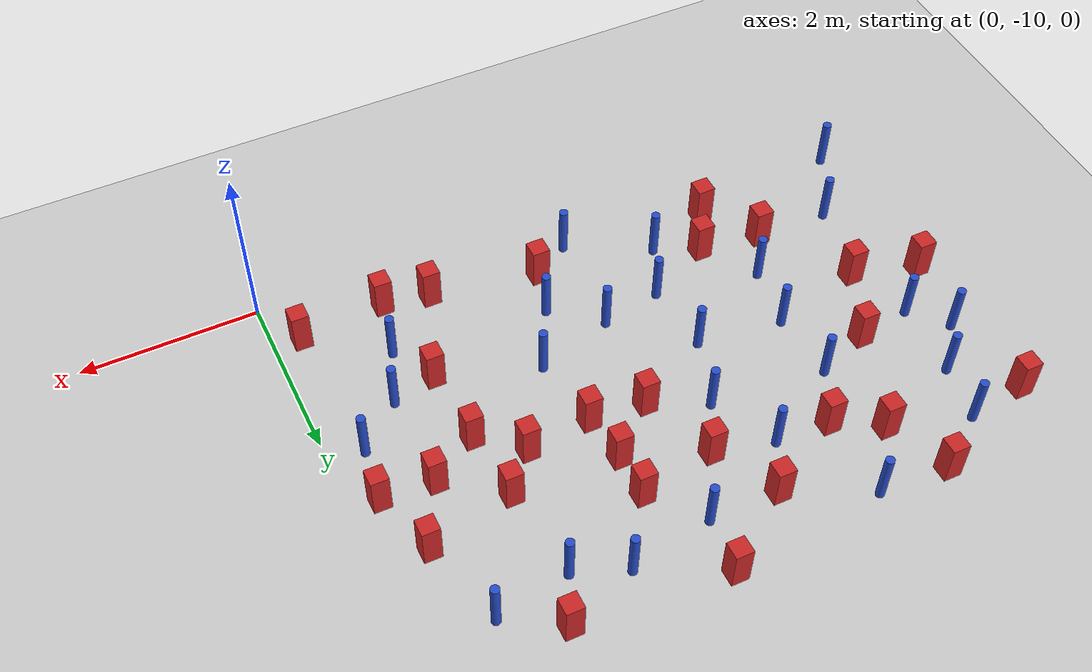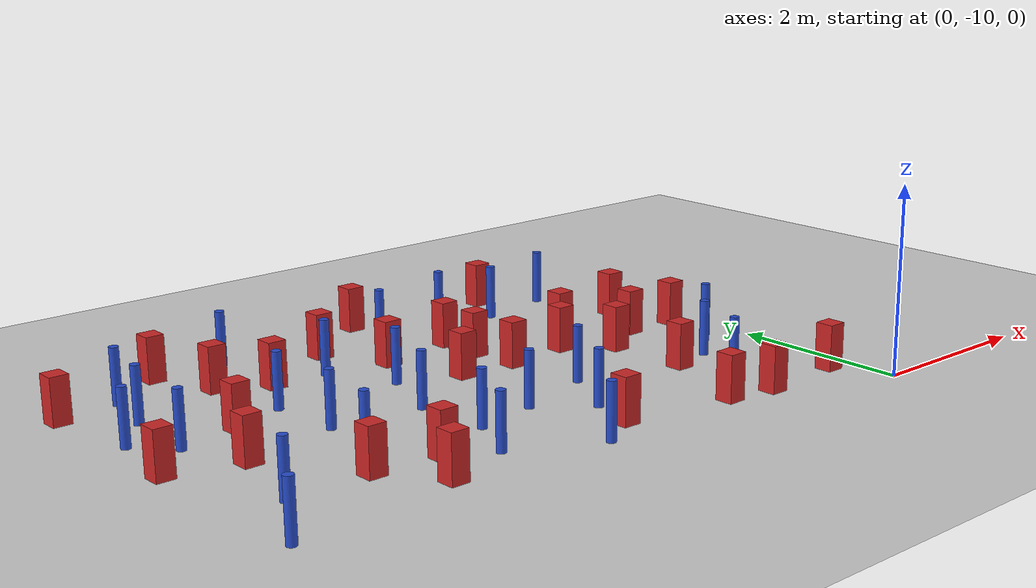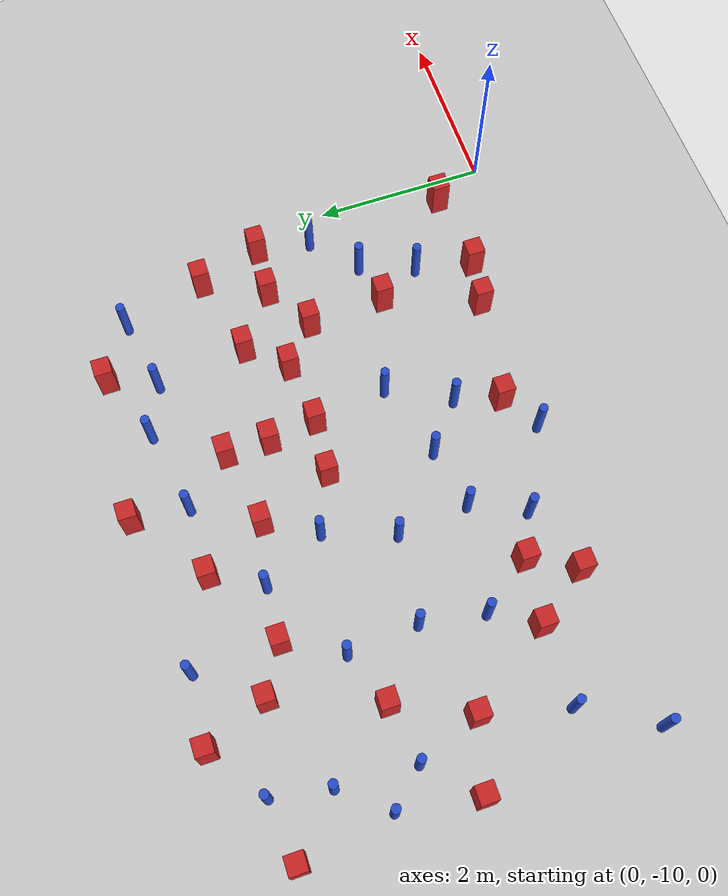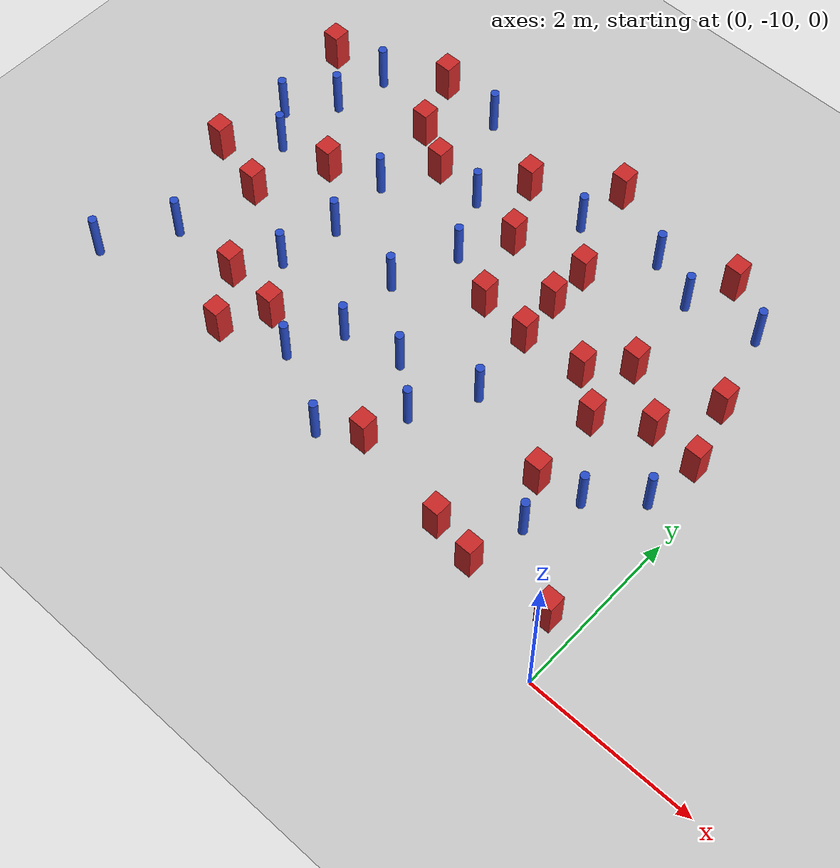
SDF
<sdf version="1.6">
 <world name="default">
  <model name="ground_plane">
   <static>1</static>
   <link name="link">
    <collision name="collision">
     <geometry><plane><normal>0 0 1</normal><size>100 100</size></plane></geometry>
     <surface><friction><ode><mu>100</mu><mu2>50</mu2></ode></friction></surface>
    </collision>
    <visual name="visual">
     <cast_shadows>0</cast_shadows>
     <geometry><plane><normal>0 0 1</normal><size>100 100</size></plane></geometry>
     <material>
      <ambient>1.0 1.0 1.0 1.0</ambient>
      <diffuse>0.8 0.8 0.8 1.0</diffuse>
      <specular>0.01 0.01 0.01 1.000000</specular>
     </material>
    </visual>
   </link>
  </model>
  <model name="square_post_obstacle3">
   <static>true</static>
   <pose>-3.95371555942 -5.46030801869 -6.11067671241e-07 -5.50515727128e-06 -8.79689657224e-07 2.37013304536e-05</pose>
   <link name="link">
    <pose>0 0 0.25 0 -0 0</pose>
    <inertial>
     <mass>100</mass>
     <inertia>
      <ixx>0.166667</ixx>
      <ixy>0</ixy>
      <ixz>0</ixz>
      <iyy>0.166667</iyy>
      <iyz>0</iyz>
      <izz>0.166667</izz>
     </inertia>
    </inertial>
    <collision name="collision"><geometry><box><size>.2 .2 .5</size></box></geometry></collision>
    <visual name="visual">
     <geometry><box><size>.2 .2 .5</size></box></geometry>
     <material>
      <script><name>Gazebo/Red</name><uri>file://media/materials/scripts/gazebo.material</uri></script>
     </material>
    </visual>
   </link>
  </model>
  <model name="pole_obstacle11">
   <static>true</static>
   <pose>-4.38404824657 -8.93209616791 -9.47619616065e-06 5.49618799737e-07 2.36310414065e-07 -1.55090534796e-07</pose>
   <link name="link">
    <pose>0 0 0.3 0 -0 0</pose>
    <inertial>
     <mass>1</mass>
     <inertia><ixx>0.145833</ixx><ixy>0</ixy><ixz>0</ixz><iyy>0.145833</iyy><iyz>0</iyz><izz>0.125</izz></inertia>
    </inertial>
    <collision name="collision">
     <geometry><cylinder><radius>0.05</radius><length>.6</length></cylinder></geometry>
    </collision>
    <visual name="visual">
     <geometry><cylinder><radius>0.05</radius><length>.6</length></cylinder></geometry>
     <material>
      <script><name>Gazebo/Blue</name><uri>file://media/materials/scripts/gazebo.material</uri></script>
     </material>
    </visual>
   </link>
  </model>
  <model name="pole_obstacle13">
   <static>true</static>
   <pose>-1.12992087261 -8.8009247254 -9.47619616065e-06 5.49618799737e-07 2.36310414046e-07 -1.55090534809e-07</pose>
   <link name="link">
    <pose>0 0 0.3 0 -0 0</pose>
    <inertial>
     <mass>1</mass>
     <inertia><ixx>0.145833</ixx><ixy>0</ixy><ixz>0</ixz><iyy>0.145833</iyy><iyz>0</iyz><izz>0.125</izz></inertia>
    </inertial>
    <collision name="collision">
     <geometry><cylinder><radius>0.05</radius><length>.6</length></cylinder></geometry>
    </collision>
    <visual name="visual">
     <geometry><cylinder><radius>0.05</radius><length>.6</length></cylinder></geometry>
     <material>
      <script><name>Gazebo/Blue</name><uri>file://media/materials/scripts/gazebo.material</uri></script>
     </material>
    </visual>
   </link>
  </model>
  <model name="square_post_obstacle11">
   <static>true</static>
   <pose>-5.14176364315 -9.19598783528 -6.11067671241e-07 -5.50515727128e-06 -8.79689657224e-07 2.37013304536e-05</pose>
   <link name="link">
    <pose>0 0 0.25 0 -0 0</pose>
    <inertial>
     <mass>100</mass>
     <inertia>
      <ixx>0.166667</ixx>
      <ixy>0</ixy>
      <ixz>0</ixz>
      <iyy>0.166667</iyy>
      <iyz>0</iyz>
      <izz>0.166667</izz>
     </inertia>
    </inertial>
    <collision name="collision"><geometry><box><size>.2 .2 .5</size></box></geometry></collision>
    <visual name="visual">
     <geometry><box><size>.2 .2 .5</size></box></geometry>
     <material>
      <script><name>Gazebo/Red</name><uri>file://media/materials/scripts/gazebo.material</uri></script>
     </material>
    </visual>
   </link>
  </model>
  <model name="pole_obstacle17">
   <static>true</static>
   <pose>-6.46383993216 -6.92550078905 -9.47619616065e-06 5.49618799737e-07 2.36310414037e-07 -1.55090534814e-07</pose>
   <link name="link">
    <pose>0 0 0.3 0 -0 0</pose>
    <inertial>
     <mass>1</mass>
     <inertia><ixx>0.145833</ixx><ixy>0</ixy><ixz>0</ixz><iyy>0.145833</iyy><iyz>0</iyz><izz>0.125</izz></inertia>
    </inertial>
    <collision name="collision">
     <geometry><cylinder><radius>0.05</radius><length>.6</length></cylinder></geometry>
    </collision>
    <visual name="visual">
     <geometry><cylinder><radius>0.05</radius><length>.6</length></cylinder></geometry>
     <material>
      <script><name>Gazebo/Blue</name><uri>file://media/materials/scripts/gazebo.material</uri></script>
     </material>
    </visual>
   </link>
  </model>
  <model name="pole_obstacle27">
   <static>true</static>
   <pose>-0.389254894963 -7.71401742755 -9.47619616065e-06 5.49618799737e-07 2.36310414065e-07 -1.55090534796e-07</pose>
   <link name="link">
    <pose>0 0 0.3 0 -0 0</pose>
    <inertial>
     <mass>1</mass>
     <inertia><ixx>0.145833</ixx><ixy>0</ixy><ixz>0</ixz><iyy>0.145833</iyy><iyz>0</iyz><izz>0.125</izz></inertia>
    </inertial>
    <collision name="collision">
     <geometry><cylinder><radius>0.05</radius><length>.6</length></cylinder></geometry>
    </collision>
    <visual name="visual">
     <geometry><cylinder><radius>0.05</radius><length>.6</length></cylinder></geometry>
     <material>
      <script><name>Gazebo/Blue</name><uri>file://media/materials/scripts/gazebo.material</uri></script>
     </material>
    </visual>
   </link>
  </model>
  <model name="pole_obstacle30">
   <static>true</static>
   <pose>-4.10246379616 -8.32834029133 -9.47619616065e-06 5.49618799737e-07 2.36310414065e-07 -1.55090534796e-07</pose>
   <link name="link">
    <pose>0 0 0.3 0 -0 0</pose>
    <inertial>
     <mass>1</mass>
     <inertia><ixx>0.145833</ixx><ixy>0</ixy><ixz>0</ixz><iyy>0.145833</iyy><iyz>0</iyz><izz>0.125</izz></inertia>
    </inertial>
    <collision name="collision">
     <geometry><cylinder><radius>0.05</radius><length>.6</length></cylinder></geometry>
    </collision>
    <visual name="visual">
     <geometry><cylinder><radius>0.05</radius><length>.6</length></cylinder></geometry>
     <material>
      <script><name>Gazebo/Blue</name><uri>file://media/materials/scripts/gazebo.material</uri></script>
     </material>
    </visual>
   </link>
  </model>
  <model name="pole_obstacle31">
   <static>true</static>
   <pose>-6.28884471075 -5.4136724154 -9.47619616065e-06 5.49618799737e-07 2.36310414037e-07 -1.55090534814e-07</pose>
   <link name="link">
    <pose>0 0 0.3 0 -0 0</pose>
    <inertial>
     <mass>1</mass>
     <inertia><ixx>0.145833</ixx><ixy>0</ixy><ixz>0</ixz><iyy>0.145833</iyy><iyz>0</iyz><izz>0.125</izz></inertia>
    </inertial>
    <collision name="collision">
     <geometry><cylinder><radius>0.05</radius><length>.6</length></cylinder></geometry>
    </collision>
    <visual name="visual">
     <geometry><cylinder><radius>0.05</radius><length>.6</length></cylinder></geometry>
     <material>
      <script><name>Gazebo/Blue</name><uri>file://media/materials/scripts/gazebo.material</uri></script>
     </material>
    </visual>
   </link>
  </model>
  <model name="pole_obstacle32">
   <static>true</static>
   <pose>-3.17592929351 -5.47292304424 -9.4761961606e-06 5.49618799729e-07 2.36310414006e-07 -1.55090534822e-07</pose>
   <link name="link">
    <pose>0 0 0.3 0 -0 0</pose>
    <inertial>
     <mass>1</mass>
     <inertia><ixx>0.145833</ixx><ixy>0</ixy><ixz>0</ixz><iyy>0.145833</iyy><iyz>0</iyz><izz>0.125</izz></inertia>
    </inertial>
    <collision name="collision">
     <geometry><cylinder><radius>0.05</radius><length>.6</length></cylinder></geometry>
    </collision>
    <visual name="visual">
     <geometry><cylinder><radius>0.05</radius><length>.6</length></cylinder></geometry>
     <material>
      <script><name>Gazebo/Blue</name><uri>file://media/materials/scripts/gazebo.material</uri></script>
     </material>
    </visual>
   </link>
  </model>
  <model name="pole_obstacle36">
   <static>true</static>
   <pose>-5.15330164395 -7.38669742684 -9.47619616065e-06 5.49618799737e-07 2.36310414037e-07 -1.55090534814e-07</pose>
   <link name="link">
    <pose>0 0 0.3 0 -0 0</pose>
    <inertial>
     <mass>1</mass>
     <inertia><ixx>0.145833</ixx><ixy>0</ixy><ixz>0</ixz><iyy>0.145833</iyy><iyz>0</iyz><izz>0.125</izz></inertia>
    </inertial>
    <collision name="collision">
     <geometry><cylinder><radius>0.05</radius><length>.6</length></cylinder></geometry>
    </collision>
    <visual name="visual">
     <geometry><cylinder><radius>0.05</radius><length>.6</length></cylinder></geometry>
     <material>
      <script><name>Gazebo/Blue</name><uri>file://media/materials/scripts/gazebo.material</uri></script>
     </material>
    </visual>
   </link>
  </model>
  <model name="pole_obstacle37">
   <static>true</static>
   <pose>-2.51321072136 -7.92916862401 -9.47619616065e-06 5.49618799738e-07 2.3631041406e-07 -1.55090534801e-07</pose>
   <link name="link">
    <pose>0 0 0.3 0 -0 0</pose>
    <inertial>
     <mass>1</mass>
     <inertia><ixx>0.145833</ixx><ixy>0</ixy><ixz>0</ixz><iyy>0.145833</iyy><iyz>0</iyz><izz>0.125</izz></inertia>
    </inertial>
    <collision name="collision">
     <geometry><cylinder><radius>0.05</radius><length>.6</length></cylinder></geometry>
    </collision>
    <visual name="visual">
     <geometry><cylinder><radius>0.05</radius><length>.6</length></cylinder></geometry>
     <material>
      <script><name>Gazebo/Blue</name><uri>file://media/materials/scripts/gazebo.material</uri></script>
     </material>
    </visual>
   </link>
  </model>
  <model name="square_post_obstacle36">
   <static>true</static>
   <pose>-4.86638394411 -5.97102275181 -6.11067671241e-07 -5.50515727128e-06 -8.79689657224e-07 2.37013304536e-05</pose>
   <link name="link">
    <pose>0 0 0.25 0 -0 0</pose>
    <inertial>
     <mass>100</mass>
     <inertia>
      <ixx>0.166667</ixx>
      <ixy>0</ixy>
      <ixz>0</ixz>
      <iyy>0.166667</iyy>
      <iyz>0</iyz>
      <izz>0.166667</izz>
     </inertia>
    </inertial>
    <collision name="collision"><geometry><box><size>.2 .2 .5</size></box></geometry></collision>
    <visual name="visual">
     <geometry><box><size>.2 .2 .5</size></box></geometry>
     <material>
      <script><name>Gazebo/Red</name><uri>file://media/materials/scripts/gazebo.material</uri></script>
     </material>
    </visual>
   </link>
  </model>
  <model name="pole_obstacle48">
   <static>true</static>
   <pose>-4.1774463068 -7.51111103914 -9.47619616065e-06 5.49618799737e-07 2.36310414037e-07 -1.55090534814e-07</pose>
   <link name="link">
    <pose>0 0 0.3 0 -0 0</pose>
    <inertial>
     <mass>1</mass>
     <inertia><ixx>0.145833</ixx><ixy>0</ixy><ixz>0</ixz><iyy>0.145833</iyy><iyz>0</iyz><izz>0.125</izz></inertia>
    </inertial>
    <collision name="collision">
     <geometry><cylinder><radius>0.05</radius><length>.6</length></cylinder></geometry>
    </collision>
    <visual name="visual">
     <geometry><cylinder><radius>0.05</radius><length>.6</length></cylinder></geometry>
     <material>
      <script><name>Gazebo/Blue</name><uri>file://media/materials/scripts/gazebo.material</uri></script>
     </material>
    </visual>
   </link>
  </model>
  <model name="pole_obstacle50">
   <static>true</static>
   <pose>-5.21162232095 -6.59021887839 -9.47619616065e-06 5.49618799737e-07 2.36310414037e-07 -1.55090534814e-07</pose>
   <link name="link">
    <pose>0 0 0.3 0 -0 0</pose>
    <inertial>
     <mass>1</mass>
     <inertia><ixx>0.145833</ixx><ixy>0</ixy><ixz>0</ixz><iyy>0.145833</iyy><iyz>0</iyz><izz>0.125</izz></inertia>
    </inertial>
    <collision name="collision">
     <geometry><cylinder><radius>0.05</radius><length>.6</length></cylinder></geometry>
    </collision>
    <visual name="visual">
     <geometry><cylinder><radius>0.05</radius><length>.6</length></cylinder></geometry>
     <material>
      <script><name>Gazebo/Blue</name><uri>file://media/materials/scripts/gazebo.material</uri></script>
     </material>
    </visual>
   </link>
  </model>
  <model name="square_post_obstacle40">
   <static>true</static>
   <pose>-0.301909173849 -9.3842624122 -6.11067671241e-07 -5.50515727128e-06 -8.79689657224e-07 2.37013304536e-05</pose>
   <link name="link">
    <pose>0 0 0.25 0 -0 0</pose>
    <inertial>
     <mass>100</mass>
     <inertia>
      <ixx>0.166667</ixx>
      <ixy>0</ixy>
      <ixz>0</ixz>
      <iyy>0.166667</iyy>
      <iyz>0</iyz>
      <izz>0.166667</izz>
     </inertia>
    </inertial>
    <collision name="collision"><geometry><box><size>.2 .2 .5</size></box></geometry></collision>
    <visual name="visual">
     <geometry><box><size>.2 .2 .5</size></box></geometry>
     <material>
      <script><name>Gazebo/Red</name><uri>file://media/materials/scripts/gazebo.material</uri></script>
     </material>
    </visual>
   </link>
  </model>
  <model name="pole_obstacle55">
   <static>true</static>
   <pose>-6.41034782529 -6.05488212542 -9.47619616065e-06 5.49618799737e-07 2.36310414037e-07 -1.55090534814e-07</pose>
   <link name="link">
    <pose>0 0 0.3 0 -0 0</pose>
    <inertial>
     <mass>1</mass>
     <inertia><ixx>0.145833</ixx><ixy>0</ixy><ixz>0</ixz><iyy>0.145833</iyy><iyz>0</iyz><izz>0.125</izz></inertia>
    </inertial>
    <collision name="collision">
     <geometry><cylinder><radius>0.05</radius><length>.6</length></cylinder></geometry>
    </collision>
    <visual name="visual">
     <geometry><cylinder><radius>0.05</radius><length>.6</length></cylinder></geometry>
     <material>
      <script><name>Gazebo/Blue</name><uri>file://media/materials/scripts/gazebo.material</uri></script>
     </material>
    </visual>
   </link>
  </model>
  <model name="square_post_obstacle47">
   <static>true</static>
   <pose>-1.39496907529 -8.28963771189 -6.11067671241e-07 -5.50515727128e-06 -8.79689657224e-07 2.37013304536e-05</pose>
   <link name="link">
    <pose>0 0 0.25 0 -0 0</pose>
    <inertial>
     <mass>100</mass>
     <inertia>
      <ixx>0.166667</ixx>
      <ixy>0</ixy>
      <ixz>0</ixz>
      <iyy>0.166667</iyy>
      <iyz>0</iyz>
      <izz>0.166667</izz>
     </inertia>
    </inertial>
    <collision name="collision"><geometry><box><size>.2 .2 .5</size></box></geometry></collision>
    <visual name="visual">
     <geometry><box><size>.2 .2 .5</size></box></geometry>
     <material>
      <script><name>Gazebo/Red</name><uri>file://media/materials/scripts/gazebo.material</uri></script>
     </material>
    </visual>
   </link>
  </model>
  <model name="square_post_obstacle59">
   <static>true</static>
   <pose>-6.94653179612 -7.41567846652 -6.11067671241e-07 -5.50515727128e-06 -8.79689657224e-07 2.37013304536e-05</pose>
   <link name="link">
    <pose>0 0 0.25 0 -0 0</pose>
    <inertial>
     <mass>100</mass>
     <inertia>
      <ixx>0.166667</ixx>
      <ixy>0</ixy>
      <ixz>0</ixz>
      <iyy>0.166667</iyy>
      <iyz>0</iyz>
      <izz>0.166667</izz>
     </inertia>
    </inertial>
    <collision name="collision"><geometry><box><size>.2 .2 .5</size></box></geometry></collision>
    <visual name="visual">
     <geometry><box><size>.2 .2 .5</size></box></geometry>
     <material>
      <script><name>Gazebo/Red</name><uri>file://media/materials/scripts/gazebo.material</uri></script>
     </material>
    </visual>
   </link>
  </model>
  <model name="square_post_obstacle60">
   <static>true</static>
   <pose>-1.8038867019 -9.36342125733 -6.11067671241e-07 -5.50515727128e-06 -8.79689657224e-07 2.37013304536e-05</pose>
   <link name="link">
    <pose>0 0 0.25 0 -0 0</pose>
    <inertial>
     <mass>100</mass>
     <inertia>
      <ixx>0.166667</ixx>
      <ixy>0</ixy>
      <ixz>0</ixz>
      <iyy>0.166667</iyy>
      <iyz>0</iyz>
      <izz>0.166667</izz>
     </inertia>
    </inertial>
    <collision name="collision"><geometry><box><size>.2 .2 .5</size></box></geometry></collision>
    <visual name="visual">
     <geometry><box><size>.2 .2 .5</size></box></geometry>
     <material>
      <script><name>Gazebo/Red</name><uri>file://media/materials/scripts/gazebo.material</uri></script>
     </material>
    </visual>
   </link>
  </model>
  <model name="pole_obstacle73">
   <static>true</static>
   <pose>-0.798685311675 -5.36839410672 -9.47619616065e-06 5.49618799737e-07 2.36310414065e-07 -1.55090534796e-07</pose>
   <link name="link">
    <pose>0 0 0.3 0 -0 0</pose>
    <inertial>
     <mass>1</mass>
     <inertia><ixx>0.145833</ixx><ixy>0</ixy><ixz>0</ixz><iyy>0.145833</iyy><iyz>0</iyz><izz>0.125</izz></inertia>
    </inertial>
    <collision name="collision">
     <geometry><cylinder><radius>0.05</radius><length>.6</length></cylinder></geometry>
    </collision>
    <visual name="visual">
     <geometry><cylinder><radius>0.05</radius><length>.6</length></cylinder></geometry>
     <material>
      <script><name>Gazebo/Blue</name><uri>file://media/materials/scripts/gazebo.material</uri></script>
     </material>
    </visual>
   </link>
  </model>
  <model name="pole_obstacle74">
   <static>true</static>
   <pose>-0.897910355347 -8.16918525089 -9.47619616065e-06 5.49618799737e-07 2.36310414038e-07 -1.55090534813e-07</pose>
   <link name="link">
    <pose>0 0 0.3 0 -0 0</pose>
    <inertial>
     <mass>1</mass>
     <inertia><ixx>0.145833</ixx><ixy>0</ixy><ixz>0</ixz><iyy>0.145833</iyy><iyz>0</iyz><izz>0.125</izz></inertia>
    </inertial>
    <collision name="collision">
     <geometry><cylinder><radius>0.05</radius><length>.6</length></cylinder></geometry>
    </collision>
    <visual name="visual">
     <geometry><cylinder><radius>0.05</radius><length>.6</length></cylinder></geometry>
     <material>
      <script><name>Gazebo/Blue</name><uri>file://media/materials/scripts/gazebo.material</uri></script>
     </material>
    </visual>
   </link>
  </model>
  <model name="square_post_obstacle65">
   <static>true</static>
   <pose>-3.58097158695 -6.16513667123 -6.11067671241e-07 -5.50515727128e-06 -8.79689657224e-07 2.37013304536e-05</pose>
   <link name="link">
    <pose>0 0 0.25 0 -0 0</pose>
    <inertial>
     <mass>100</mass>
     <inertia>
      <ixx>0.166667</ixx>
      <ixy>0</ixy>
      <ixz>0</ixz>
      <iyy>0.166667</iyy>
      <iyz>0</iyz>
      <izz>0.166667</izz>
     </inertia>
    </inertial>
    <collision name="collision"><geometry><box><size>.2 .2 .5</size></box></geometry></collision>
    <visual name="visual">
     <geometry><box><size>.2 .2 .5</size></box></geometry>
     <material>
      <script><name>Gazebo/Red</name><uri>file://media/materials/scripts/gazebo.material</uri></script>
     </material>
    </visual>
   </link>
  </model>
  <model name="square_post_obstacle66">
   <static>true</static>
   <pose>-0.527873992376 -6.33831731109 -6.11067671241e-07 -5.50515727128e-06 -8.79689657224e-07 2.37013304536e-05</pose>
   <link name="link">
    <pose>0 0 0.25 0 -0 0</pose>
    <inertial>
     <mass>100</mass>
     <inertia>
      <ixx>0.166667</ixx>
      <ixy>0</ixy>
      <ixz>0</ixz>
      <iyy>0.166667</iyy>
      <iyz>0</iyz>
      <izz>0.166667</izz>
     </inertia>
    </inertial>
    <collision name="collision"><geometry><box><size>.2 .2 .5</size></box></geometry></collision>
    <visual name="visual">
     <geometry><box><size>.2 .2 .5</size></box></geometry>
     <material>
      <script><name>Gazebo/Red</name><uri>file://media/materials/scripts/gazebo.material</uri></script>
     </material>
    </visual>
   </link>
  </model>
  <model name="square_post_obstacle75">
   <static>true</static>
   <pose>-5.81218229049 -6.81623504157 -6.11067671241e-07 -5.50515727128e-06 -8.79689657224e-07 2.37013304536e-05</pose>
   <link name="link">
    <pose>0 0 0.25 0 -0 0</pose>
    <inertial>
     <mass>100</mass>
     <inertia>
      <ixx>0.166667</ixx>
      <ixy>0</ixy>
      <ixz>0</ixz>
      <iyy>0.166667</iyy>
      <iyz>0</iyz>
      <izz>0.166667</izz>
     </inertia>
    </inertial>
    <collision name="collision"><geometry><box><size>.2 .2 .5</size></box></geometry></collision>
    <visual name="visual">
     <geometry><box><size>.2 .2 .5</size></box></geometry>
     <material>
      <script><name>Gazebo/Red</name><uri>file://media/materials/scripts/gazebo.material</uri></script>
     </material>
    </visual>
   </link>
  </model>
  <model name="square_post_obstacle79">
   <static>true</static>
   <pose>-2.70569212412 -6.01404604692 -6.11067671241e-07 -5.50515727128e-06 -8.79689657224e-07 2.37013304536e-05</pose>
   <link name="link">
    <pose>0 0 0.25 0 -0 0</pose>
    <inertial>
     <mass>100</mass>
     <inertia>
      <ixx>0.166667</ixx>
      <ixy>0</ixy>
      <ixz>0</ixz>
      <iyy>0.166667</iyy>
      <iyz>0</iyz>
      <izz>0.166667</izz>
     </inertia>
    </inertial>
    <collision name="collision"><geometry><box><size>.2 .2 .5</size></box></geometry></collision>
    <visual name="visual">
     <geometry><box><size>.2 .2 .5</size></box></geometry>
     <material>
      <script><name>Gazebo/Red</name><uri>file://media/materials/scripts/gazebo.material</uri></script>
     </material>
    </visual>
   </link>
  </model>
  <model name="square_post_obstacle80">
   <static>true</static>
   <pose>-3.10354058353 -4.84023745276 -6.11067671241e-07 -5.50515727128e-06 -8.79689657224e-07 2.37013304536e-05</pose>
   <link name="link">
    <pose>0 0 0.25 0 -0 0</pose>
    <inertial>
     <mass>100</mass>
     <inertia>
      <ixx>0.166667</ixx>
      <ixy>0</ixy>
      <ixz>0</ixz>
      <iyy>0.166667</iyy>
      <iyz>0</iyz>
      <izz>0.166667</izz>
     </inertia>
    </inertial>
    <collision name="collision"><geometry><box><size>.2 .2 .5</size></box></geometry></collision>
    <visual name="visual">
     <geometry><box><size>.2 .2 .5</size></box></geometry>
     <material>
      <script><name>Gazebo/Red</name><uri>file://media/materials/scripts/gazebo.material</uri></script>
     </material>
    </visual>
   </link>
  </model>
  <model name="pole_obstacle99">
   <static>true</static>
   <pose>-2.21980350445 -5.29520624267 -9.47619616065e-06 5.49618799738e-07 2.3631041406e-07 -1.55090534801e-07</pose>
   <link name="link">
    <pose>0 0 0.3 0 -0 0</pose>
    <inertial>
     <mass>1</mass>
     <inertia><ixx>0.145833</ixx><ixy>0</ixy><ixz>0</ixz><iyy>0.145833</iyy><iyz>0</iyz><izz>0.125</izz></inertia>
    </inertial>
    <collision name="collision">
     <geometry><cylinder><radius>0.05</radius><length>.6</length></cylinder></geometry>
    </collision>
    <visual name="visual">
     <geometry><cylinder><radius>0.05</radius><length>.6</length></cylinder></geometry>
     <material>
      <script><name>Gazebo/Blue</name><uri>file://media/materials/scripts/gazebo.material</uri></script>
     </material>
    </visual>
   </link>
  </model>
  <model name="square_post_obstacle92">
   <static>true</static>
   <pose>-4.8548030735 -8.68850081849 -6.11067671241e-07 -5.50515727128e-06 -8.79689657224e-07 2.37013304536e-05</pose>
   <link name="link">
    <pose>0 0 0.25 0 -0 0</pose>
    <inertial>
     <mass>100</mass>
     <inertia>
      <ixx>0.166667</ixx>
      <ixy>0</ixy>
      <ixz>0</ixz>
      <iyy>0.166667</iyy>
      <iyz>0</iyz>
      <izz>0.166667</izz>
     </inertia>
    </inertial>
    <collision name="collision"><geometry><box><size>.2 .2 .5</size></box></geometry></collision>
    <visual name="visual">
     <geometry><box><size>.2 .2 .5</size></box></geometry>
     <material>
      <script><name>Gazebo/Red</name><uri>file://media/materials/scripts/gazebo.material</uri></script>
     </material>
    </visual>
   </link>
  </model>
  <model name="square_post_obstacle99">
   <static>true</static>
   <pose>-3.26168625344 -7.00785458594 -6.11067671241e-07 -5.50515727128e-06 -8.79689657224e-07 2.37013304536e-05</pose>
   <link name="link">
    <pose>0 0 0.25 0 -0 0</pose>
    <inertial>
     <mass>100</mass>
     <inertia>
      <ixx>0.166667</ixx>
      <ixy>0</ixy>
      <ixz>0</ixz>
      <iyy>0.166667</iyy>
      <iyz>0</iyz>
      <izz>0.166667</izz>
     </inertia>
    </inertial>
    <collision name="collision"><geometry><box><size>.2 .2 .5</size></box></geometry></collision>
    <visual name="visual">
     <geometry><box><size>.2 .2 .5</size></box></geometry>
     <material>
      <script><name>Gazebo/Red</name><uri>file://media/materials/scripts/gazebo.material</uri></script>
     </material>
    </visual>
   </link>
  </model>
  <model name="pole_obstacle104">
   <static>true</static>
   <pose>-2.8847888371 -8.62874314237 -9.4761961606e-06 5.49618799729e-07 2.36310414e-07 -1.55090534824e-07</pose>
   <link name="link">
    <pose>0 0 0.3 0 -0 0</pose>
    <inertial>
     <mass>1</mass>
     <inertia><ixx>0.145833</ixx><ixy>0</ixy><ixz>0</ixz><iyy>0.145833</iyy><iyz>0</iyz><izz>0.125</izz></inertia>
    </inertial>
    <collision name="collision">
     <geometry><cylinder><radius>0.05</radius><length>.6</length></cylinder></geometry>
    </collision>
    <visual name="visual">
     <geometry><cylinder><radius>0.05</radius><length>.6</length></cylinder></geometry>
     <material>
      <script><name>Gazebo/Blue</name><uri>file://media/materials/scripts/gazebo.material</uri></script>
     </material>
    </visual>
   </link>
  </model>
  <model name="pole_obstacle112">
   <static>true</static>
   <pose>-6.90024262196 -9.36630064303 -9.47619616065e-06 5.49618799737e-07 2.36310414065e-07 -1.55090534796e-07</pose>
   <link name="link">
    <pose>0 0 0.3 0 -0 0</pose>
    <inertial>
     <mass>1</mass>
     <inertia><ixx>0.145833</ixx><ixy>0</ixy><ixz>0</ixz><iyy>0.145833</iyy><iyz>0</iyz><izz>0.125</izz></inertia>
    </inertial>
    <collision name="collision">
     <geometry><cylinder><radius>0.05</radius><length>.6</length></cylinder></geometry>
    </collision>
    <visual name="visual">
     <geometry><cylinder><radius>0.05</radius><length>.6</length></cylinder></geometry>
     <material>
      <script><name>Gazebo/Blue</name><uri>file://media/materials/scripts/gazebo.material</uri></script>
     </material>
    </visual>
   </link>
  </model>
  <model name="pole_obstacle114">
   <static>true</static>
   <pose>-1.64329532261 -5.52371696116 -9.47619616065e-06 5.49618799737e-07 2.36310414061e-07 -1.550905348e-07</pose>
   <link name="link">
    <pose>0 0 0.3 0 -0 0</pose>
    <inertial>
     <mass>1</mass>
     <inertia><ixx>0.145833</ixx><ixy>0</ixy><ixz>0</ixz><iyy>0.145833</iyy><iyz>0</iyz><izz>0.125</izz></inertia>
    </inertial>
    <collision name="collision">
     <geometry><cylinder><radius>0.05</radius><length>.6</length></cylinder></geometry>
    </collision>
    <visual name="visual">
     <geometry><cylinder><radius>0.05</radius><length>.6</length></cylinder></geometry>
     <material>
      <script><name>Gazebo/Blue</name><uri>file://media/materials/scripts/gazebo.material</uri></script>
     </material>
    </visual>
   </link>
  </model>
  <model name="pole_obstacle115">
   <static>true</static>
   <pose>-3.40367059697 -8.19729226476 -9.47619616065e-06 5.49618799738e-07 2.36310414059e-07 -1.55090534802e-07</pose>
   <link name="link">
    <pose>0 0 0.3 0 -0 0</pose>
    <inertial>
     <mass>1</mass>
     <inertia><ixx>0.145833</ixx><ixy>0</ixy><ixz>0</ixz><iyy>0.145833</iyy><iyz>0</iyz><izz>0.125</izz></inertia>
    </inertial>
    <collision name="collision">
     <geometry><cylinder><radius>0.05</radius><length>.6</length></cylinder></geometry>
    </collision>
    <visual name="visual">
     <geometry><cylinder><radius>0.05</radius><length>.6</length></cylinder></geometry>
     <material>
      <script><name>Gazebo/Blue</name><uri>file://media/materials/scripts/gazebo.material</uri></script>
     </material>
    </visual>
   </link>
  </model>
  <model name="square_post_obstacle118">
   <static>true</static>
   <pose>-1.44279554461 -7.38337424911 -6.11067671241e-07 -5.50515727128e-06 -8.79689657224e-07 2.37013304536e-05</pose>
   <link name="link">
    <pose>0 0 0.25 0 -0 0</pose>
    <inertial>
     <mass>100</mass>
     <inertia>
      <ixx>0.166667</ixx>
      <ixy>0</ixy>
      <ixz>0</ixz>
      <iyy>0.166667</iyy>
      <iyz>0</iyz>
      <izz>0.166667</izz>
     </inertia>
    </inertial>
    <collision name="collision"><geometry><box><size>.2 .2 .5</size></box></geometry></collision>
    <visual name="visual">
     <geometry><box><size>.2 .2 .5</size></box></geometry>
     <material>
      <script><name>Gazebo/Red</name><uri>file://media/materials/scripts/gazebo.material</uri></script>
     </material>
    </visual>
   </link>
  </model>
  <model name="square_post_obstacle124">
   <static>true</static>
   <pose>-1.89691083683 -6.99461518189 -6.11067671241e-07 -5.50515727128e-06 -8.79689657224e-07 2.37013304536e-05</pose>
   <link name="link">
    <pose>0 0 0.25 0 -0 0</pose>
    <inertial>
     <mass>100</mass>
     <inertia>
      <ixx>0.166667</ixx>
      <ixy>0</ixy>
      <ixz>0</ixz>
      <iyy>0.166667</iyy>
      <iyz>0</iyz>
      <izz>0.166667</izz>
     </inertia>
    </inertial>
    <collision name="collision"><geometry><box><size>.2 .2 .5</size></box></geometry></collision>
    <visual name="visual">
     <geometry><box><size>.2 .2 .5</size></box></geometry>
     <material>
      <script><name>Gazebo/Red</name><uri>file://media/materials/scripts/gazebo.material</uri></script>
     </material>
    </visual>
   </link>
  </model>
  <model name="square_post_obstacle128">
   <static>true</static>
   <pose>-5.66293745979 -4.97249735625 -6.11067671241e-07 -5.50515727128e-06 -8.79689657224e-07 2.37013304536e-05</pose>
   <link name="link">
    <pose>0 0 0.25 0 -0 0</pose>
    <inertial>
     <mass>100</mass>
     <inertia>
      <ixx>0.166667</ixx>
      <ixy>0</ixy>
      <ixz>0</ixz>
      <iyy>0.166667</iyy>
      <iyz>0</iyz>
      <izz>0.166667</izz>
     </inertia>
    </inertial>
    <collision name="collision"><geometry><box><size>.2 .2 .5</size></box></geometry></collision>
    <visual name="visual">
     <geometry><box><size>.2 .2 .5</size></box></geometry>
     <material>
      <script><name>Gazebo/Red</name><uri>file://media/materials/scripts/gazebo.material</uri></script>
     </material>
    </visual>
   </link>
  </model>
  <model name="pole_obstacle132">
   <static>true</static>
   <pose>-6.44122981251 -8.57981291718 -9.47619616065e-06 5.49618799737e-07 2.36310414065e-07 -1.55090534796e-07</pose>
   <link name="link">
    <pose>0 0 0.3 0 -0 0</pose>
    <inertial>
     <mass>1</mass>
     <inertia><ixx>0.145833</ixx><ixy>0</ixy><ixz>0</ixz><iyy>0.145833</iyy><iyz>0</iyz><izz>0.125</izz></inertia>
    </inertial>
    <collision name="collision">
     <geometry><cylinder><radius>0.05</radius><length>.6</length></cylinder></geometry>
    </collision>
    <visual name="visual">
     <geometry><cylinder><radius>0.05</radius><length>.6</length></cylinder></geometry>
     <material>
      <script><name>Gazebo/Blue</name><uri>file://media/materials/scripts/gazebo.material</uri></script>
     </material>
    </visual>
   </link>
  </model>
  <model name="square_post_obstacle131">
   <static>true</static>
   <pose>-3.02752138347 -9.14381359818 -6.11067671241e-07 -5.50515727128e-06 -8.79689657224e-07 2.37013304536e-05</pose>
   <link name="link">
    <pose>0 0 0.25 0 -0 0</pose>
    <inertial>
     <mass>100</mass>
     <inertia>
      <ixx>0.166667</ixx>
      <ixy>0</ixy>
      <ixz>0</ixz>
      <iyy>0.166667</iyy>
      <iyz>0</iyz>
      <izz>0.166667</izz>
     </inertia>
    </inertial>
    <collision name="collision"><geometry><box><size>.2 .2 .5</size></box></geometry></collision>
    <visual name="visual">
     <geometry><box><size>.2 .2 .5</size></box></geometry>
     <material>
      <script><name>Gazebo/Red</name><uri>file://media/materials/scripts/gazebo.material</uri></script>
     </material>
    </visual>
   </link>
  </model>
  <model name="pole_obstacle135">
   <static>true</static>
   <pose>-3.47325242596 -9.41124437518 -9.47619616065e-06 5.49618799738e-07 2.36310414059e-07 -1.55090534802e-07</pose>
   <link name="link">
    <pose>0 0 0.3 0 -0 0</pose>
    <inertial>
     <mass>1</mass>
     <inertia><ixx>0.145833</ixx><ixy>0</ixy><ixz>0</ixz><iyy>0.145833</iyy><iyz>0</iyz><izz>0.125</izz></inertia>
    </inertial>
    <collision name="collision">
     <geometry><cylinder><radius>0.05</radius><length>.6</length></cylinder></geometry>
    </collision>
    <visual name="visual">
     <geometry><cylinder><radius>0.05</radius><length>.6</length></cylinder></geometry>
     <material>
      <script><name>Gazebo/Blue</name><uri>file://media/materials/scripts/gazebo.material</uri></script>
     </material>
    </visual>
   </link>
  </model>
  <model name="pole_obstacle159">
   <static>true</static>
   <pose>-4.88770994111 -5.02619630647 -9.47619616065e-06 5.49618799737e-07 2.36310414037e-07 -1.55090534814e-07</pose>
   <link name="link">
    <pose>0 0 0.3 0 -0 0</pose>
    <inertial>
     <mass>1</mass>
     <inertia><ixx>0.145833</ixx><ixy>0</ixy><ixz>0</ixz><iyy>0.145833</iyy><iyz>0</iyz><izz>0.125</izz></inertia>
    </inertial>
    <collision name="collision">
     <geometry><cylinder><radius>0.05</radius><length>.6</length></cylinder></geometry>
    </collision>
    <visual name="visual">
     <geometry><cylinder><radius>0.05</radius><length>.6</length></cylinder></geometry>
     <material>
      <script><name>Gazebo/Blue</name><uri>file://media/materials/scripts/gazebo.material</uri></script>
     </material>
    </visual>
   </link>
  </model>
  <model name="square_post_obstacle163">
   <static>true</static>
   <pose>-2.63328884415 -7.06768160969 -6.11067671241e-07 -5.50515727128e-06 -8.79689657224e-07 2.37013304536e-05</pose>
   <link name="link">
    <pose>0 0 0.25 0 -0 0</pose>
    <inertial>
     <mass>100</mass>
     <inertia>
      <ixx>0.166667</ixx>
      <ixy>0</ixy>
      <ixz>0</ixz>
      <iyy>0.166667</iyy>
      <iyz>0</iyz>
      <izz>0.166667</izz>
     </inertia>
    </inertial>
    <collision name="collision"><geometry><box><size>.2 .2 .5</size></box></geometry></collision>
    <visual name="visual">
     <geometry><box><size>.2 .2 .5</size></box></geometry>
     <material>
      <script><name>Gazebo/Red</name><uri>file://media/materials/scripts/gazebo.material</uri></script>
     </material>
    </visual>
   </link>
  </model>
  <model name="pole_obstacle174">
   <static>true</static>
   <pose>-3.89741148104 -6.72744770181 -9.47619616065e-06 5.49618799738e-07 2.3631041406e-07 -1.55090534801e-07</pose>
   <link name="link">
    <pose>0 0 0.3 0 -0 0</pose>
    <inertial>
     <mass>1</mass>
     <inertia><ixx>0.145833</ixx><ixy>0</ixy><ixz>0</ixz><iyy>0.145833</iyy><iyz>0</iyz><izz>0.125</izz></inertia>
    </inertial>
    <collision name="collision">
     <geometry><cylinder><radius>0.05</radius><length>.6</length></cylinder></geometry>
    </collision>
    <visual name="visual">
     <geometry><cylinder><radius>0.05</radius><length>.6</length></cylinder></geometry>
     <material>
      <script><name>Gazebo/Blue</name><uri>file://media/materials/scripts/gazebo.material</uri></script>
     </material>
    </visual>
   </link>
  </model>
  <model name="pole_obstacle177">
   <static>true</static>
   <pose>-6.81001386036 -6.54454078145 -9.47619616065e-06 5.49618799737e-07 2.36310414037e-07 -1.55090534814e-07</pose>
   <link name="link">
    <pose>0 0 0.3 0 -0 0</pose>
    <inertial>
     <mass>1</mass>
     <inertia><ixx>0.145833</ixx><ixy>0</ixy><ixz>0</ixz><iyy>0.145833</iyy><iyz>0</iyz><izz>0.125</izz></inertia>
    </inertial>
    <collision name="collision">
     <geometry><cylinder><radius>0.05</radius><length>.6</length></cylinder></geometry>
    </collision>
    <visual name="visual">
     <geometry><cylinder><radius>0.05</radius><length>.6</length></cylinder></geometry>
     <material>
      <script><name>Gazebo/Blue</name><uri>file://media/materials/scripts/gazebo.material</uri></script>
     </material>
    </visual>
   </link>
  </model>
  <model name="square_post_obstacle191">
   <static>true</static>
   <pose>-6.95515346498 -5.51340727968 -6.11067671241e-07 -5.50515727128e-06 -8.79689657224e-07 2.37013304536e-05</pose>
   <link name="link">
    <pose>0 0 0.25 0 -0 0</pose>
    <inertial>
     <mass>100</mass>
     <inertia>
      <ixx>0.166667</ixx>
      <ixy>0</ixy>
      <ixz>0</ixz>
      <iyy>0.166667</iyy>
      <iyz>0</iyz>
      <izz>0.166667</izz>
     </inertia>
    </inertial>
    <collision name="collision"><geometry><box><size>.2 .2 .5</size></box></geometry></collision>
    <visual name="visual">
     <geometry><box><size>.2 .2 .5</size></box></geometry>
     <material>
      <script><name>Gazebo/Red</name><uri>file://media/materials/scripts/gazebo.material</uri></script>
     </material>
    </visual>
   </link>
  </model>
  <model name="square_post_obstacle194">
   <static>true</static>
   <pose>-6.20124180825 -7.6319744416 -6.11067671241e-07 -5.50515727128e-06 -8.79689657224e-07 2.37013304536e-05</pose>
   <link name="link">
    <pose>0 0 0.25 0 -0 0</pose>
    <inertial>
     <mass>100</mass>
     <inertia>
      <ixx>0.166667</ixx>
      <ixy>0</ixy>
      <ixz>0</ixz>
      <iyy>0.166667</iyy>
      <iyz>0</iyz>
      <izz>0.166667</izz>
     </inertia>
    </inertial>
    <collision name="collision"><geometry><box><size>.2 .2 .5</size></box></geometry></collision>
    <visual name="visual">
     <geometry><box><size>.2 .2 .5</size></box></geometry>
     <material>
      <script><name>Gazebo/Red</name><uri>file://media/materials/scripts/gazebo.material</uri></script>
     </material>
    </visual>
   </link>
  </model>
  <model name="square_post_obstacle195">
   <static>true</static>
   <pose>-5.56268788447 -8.59250362974 -6.11067671241e-07 -5.50515727128e-06 -8.79689657224e-07 2.37013304536e-05</pose>
   <link name="link">
    <pose>0 0 0.25 0 -0 0</pose>
    <inertial>
     <mass>100</mass>
     <inertia>
      <ixx>0.166667</ixx>
      <ixy>0</ixy>
      <ixz>0</ixz>
      <iyy>0.166667</iyy>
      <iyz>0</iyz>
      <izz>0.166667</izz>
     </inertia>
    </inertial>
    <collision name="collision"><geometry><box><size>.2 .2 .5</size></box></geometry></collision>
    <visual name="visual">
     <geometry><box><size>.2 .2 .5</size></box></geometry>
     <material>
      <script><name>Gazebo/Red</name><uri>file://media/materials/scripts/gazebo.material</uri></script>
     </material>
    </visual>
   </link>
  </model>
  <model name="square_post_obstacle196">
   <static>true</static>
   <pose>-5.37426660667 -5.67366921236 -6.11067671241e-07 -5.50515727128e-06 -8.79689657224e-07 2.37013304536e-05</pose>
   <link name="link">
    <pose>0 0 0.25 0 -0 0</pose>
    <inertial>
     <mass>100</mass>
     <inertia>
      <ixx>0.166667</ixx>
      <ixy>0</ixy>
      <ixz>0</ixz>
      <iyy>0.166667</iyy>
      <iyz>0</iyz>
      <izz>0.166667</izz>
     </inertia>
    </inertial>
    <collision name="collision"><geometry><box><size>.2 .2 .5</size></box></geometry></collision>
    <visual name="visual">
     <geometry><box><size>.2 .2 .5</size></box></geometry>
     <material>
      <script><name>Gazebo/Red</name><uri>file://media/materials/scripts/gazebo.material</uri></script>
     </material>
    </visual>
   </link>
  </model>
  <model name="square_post_obstacle197">
   <static>true</static>
   <pose>-0.297848064092 -7.08293656303 -6.11067671241e-07 -5.50515727128e-06 -8.79689657224e-07 2.37013304536e-05</pose>
   <link name="link">
    <pose>0 0 0.25 0 -0 0</pose>
    <inertial>
     <mass>100</mass>
     <inertia>
      <ixx>0.166667</ixx>
      <ixy>0</ixy>
      <ixz>0</ixz>
      <iyy>0.166667</iyy>
      <iyz>0</iyz>
      <izz>0.166667</izz>
     </inertia>
    </inertial>
    <collision name="collision"><geometry><box><size>.2 .2 .5</size></box></geometry></collision>
    <visual name="visual">
     <geometry><box><size>.2 .2 .5</size></box></geometry>
     <material>
      <script><name>Gazebo/Red</name><uri>file://media/materials/scripts/gazebo.material</uri></script>
     </material>
    </visual>
   </link>
  </model>
  <model name="pole_obstacle189">
   <static>true</static>
   <pose>-4.26614045893 -6.01214291378 -9.47619616065e-06 5.49618799737e-07 2.36310414037e-07 -1.55090534814e-07</pose>
   <link name="link">
    <pose>0 0 0.3 0 -0 0</pose>
    <inertial>
     <mass>1</mass>
     <inertia><ixx>0.145833</ixx><ixy>0</ixy><ixz>0</ixz><iyy>0.145833</iyy><iyz>0</iyz><izz>0.125</izz></inertia>
    </inertial>
    <collision name="collision">
     <geometry><cylinder><radius>0.05</radius><length>.6</length></cylinder></geometry>
    </collision>
    <visual name="visual">
     <geometry><cylinder><radius>0.05</radius><length>.6</length></cylinder></geometry>
     <material>
      <script><name>Gazebo/Blue</name><uri>file://media/materials/scripts/gazebo.material</uri></script>
     </material>
    </visual>
   </link>
  </model>
  <model name="pole_obstacle192">
   <static>true</static>
   <pose>-5.27599635474 -8.10455888213 -9.47619616065e-06 5.49618799737e-07 2.36310414065e-07 -1.55090534796e-07</pose>
   <link name="link">
    <pose>0 0 0.3 0 -0 0</pose>
    <inertial>
     <mass>1</mass>
     <inertia><ixx>0.145833</ixx><ixy>0</ixy><ixz>0</ixz><iyy>0.145833</iyy><iyz>0</iyz><izz>0.125</izz></inertia>
    </inertial>
    <collision name="collision">
     <geometry><cylinder><radius>0.05</radius><length>.6</length></cylinder></geometry>
    </collision>
    <visual name="visual">
     <geometry><cylinder><radius>0.05</radius><length>.6</length></cylinder></geometry>
     <material>
      <script><name>Gazebo/Blue</name><uri>file://media/materials/scripts/gazebo.material</uri></script>
     </material>
    </visual>
   </link>
  </model>
  <model name="square_post_obstacle205">
   <static>true</static>
   <pose>-1.27657956116 -9.46081626462 -6.11067671241e-07 -5.50515727128e-06 -8.79689657224e-07 2.37013304536e-05</pose>
   <link name="link">
    <pose>0 0 0.25 0 -0 0</pose>
    <inertial>
     <mass>100</mass>
     <inertia>
      <ixx>0.166667</ixx>
      <ixy>0</ixy>
      <ixz>0</ixz>
      <iyy>0.166667</iyy>
      <iyz>0</iyz>
      <izz>0.166667</izz>
     </inertia>
    </inertial>
    <collision name="collision"><geometry><box><size>.2 .2 .5</size></box></geometry></collision>
    <visual name="visual">
     <geometry><box><size>.2 .2 .5</size></box></geometry>
     <material>
      <script><name>Gazebo/Red</name><uri>file://media/materials/scripts/gazebo.material</uri></script>
     </material>
    </visual>
   </link>
  </model>
  <model name="square_post_obstacle223">
   <static>true</static>
   <pose>-1.51652163949 -6.57305471201 -6.11067671241e-07 -5.50515727128e-06 -8.79689657224e-07 2.37013304536e-05</pose>
   <link name="link">
    <pose>0 0 0.25 0 -0 0</pose>
    <inertial>
     <mass>100</mass>
     <inertia>
      <ixx>0.166667</ixx>
      <ixy>0</ixy>
      <ixz>0</ixz>
      <iyy>0.166667</iyy>
      <iyz>0</iyz>
      <izz>0.166667</izz>
     </inertia>
    </inertial>
    <collision name="collision"><geometry><box><size>.2 .2 .5</size></box></geometry></collision>
    <visual name="visual">
     <geometry><box><size>.2 .2 .5</size></box></geometry>
     <material>
      <script><name>Gazebo/Red</name><uri>file://media/materials/scripts/gazebo.material</uri></script>
     </material>
    </visual>
   </link>
  </model>
  <model name="square_post_obstacle228">
   <static>true</static>
   <pose>-1.39743215617 -4.98947690761 -6.11067671241e-07 -5.50515727128e-06 -8.79689657224e-07 2.37013304536e-05</pose>
   <link name="link">
    <pose>0 0 0.25 0 -0 0</pose>
    <inertial>
     <mass>100</mass>
     <inertia>
      <ixx>0.166667</ixx>
      <ixy>0</ixy>
      <ixz>0</ixz>
      <iyy>0.166667</iyy>
      <iyz>0</iyz>
      <izz>0.166667</izz>
     </inertia>
    </inertial>
    <collision name="collision"><geometry><box><size>.2 .2 .5</size></box></geometry></collision>
    <visual name="visual">
     <geometry><box><size>.2 .2 .5</size></box></geometry>
     <material>
      <script><name>Gazebo/Red</name><uri>file://media/materials/scripts/gazebo.material</uri></script>
     </material>
    </visual>
   </link>
  </model>
  <model name="square_post_obstacle232">
   <static>true</static>
   <pose>-2.7034700498 -6.51812002312 -6.11067671241e-07 -5.50515727128e-06 -8.79689657224e-07 2.37013304536e-05</pose>
   <link name="link">
    <pose>0 0 0.25 0 -0 0</pose>
    <inertial>
     <mass>100</mass>
     <inertia>
      <ixx>0.166667</ixx>
      <ixy>0</ixy>
      <ixz>0</ixz>
      <iyy>0.166667</iyy>
      <iyz>0</iyz>
      <izz>0.166667</izz>
     </inertia>
    </inertial>
    <collision name="collision"><geometry><box><size>.2 .2 .5</size></box></geometry></collision>
    <visual name="visual">
     <geometry><box><size>.2 .2 .5</size></box></geometry>
     <material>
      <script><name>Gazebo/Red</name><uri>file://media/materials/scripts/gazebo.material</uri></script>
     </material>
    </visual>
   </link>
  </model>
  <model name="square_post_obstacle245">
   <static>true</static>
   <pose>-0.889459049797 -7.03837002312 -6.11067671241e-07 -5.50515727128e-06 -8.79689657224e-07 2.37013304536e-05</pose>
   <link name="link">
    <pose>0 0 0.25 0 -0 0</pose>
    <inertial>
     <mass>100</mass>
     <inertia>
      <ixx>0.166667</ixx>
      <ixy>0</ixy>
      <ixz>0</ixz>
      <iyy>0.166667</iyy>
      <iyz>0</iyz>
      <izz>0.166667</izz>
     </inertia>
    </inertial>
    <collision name="collision"><geometry><box><size>.2 .2 .5</size></box></geometry></collision>
    <visual name="visual">
     <geometry><box><size>.2 .2 .5</size></box></geometry>
     <material>
      <script><name>Gazebo/Red</name><uri>file://media/materials/scripts/gazebo.material</uri></script>
     </material>
    </visual>
   </link>
  </model>
 </world>
</sdf>
